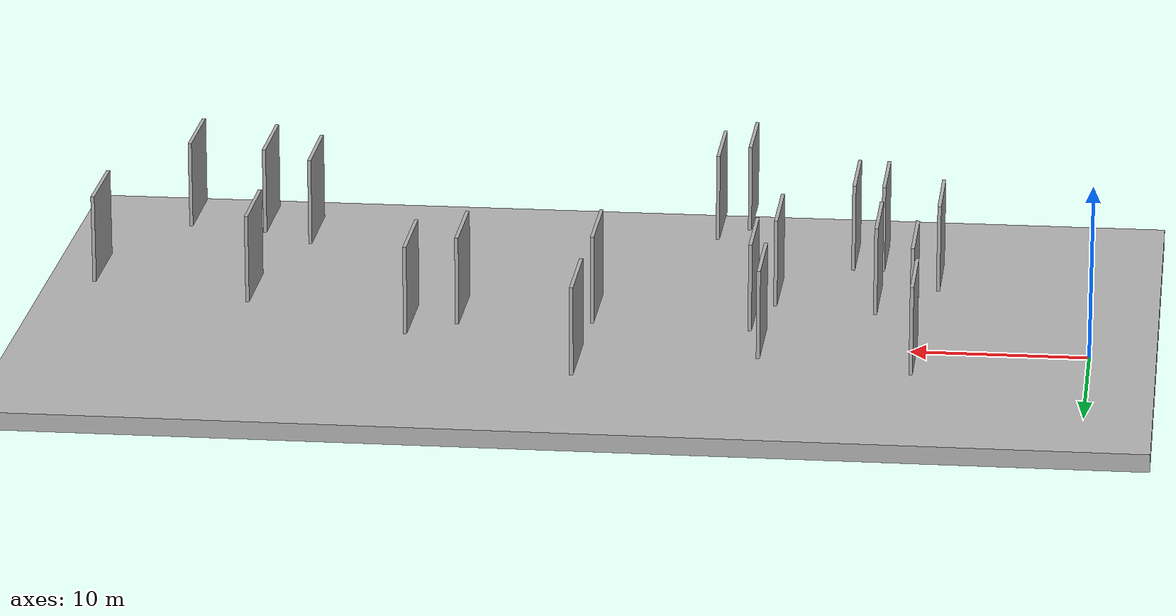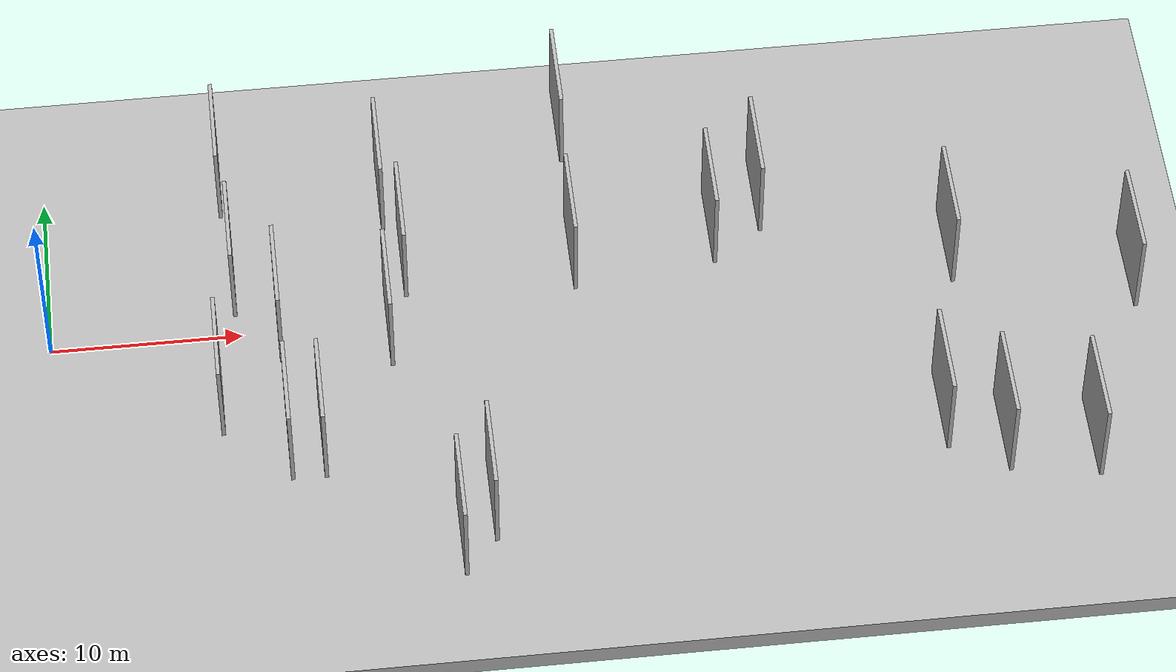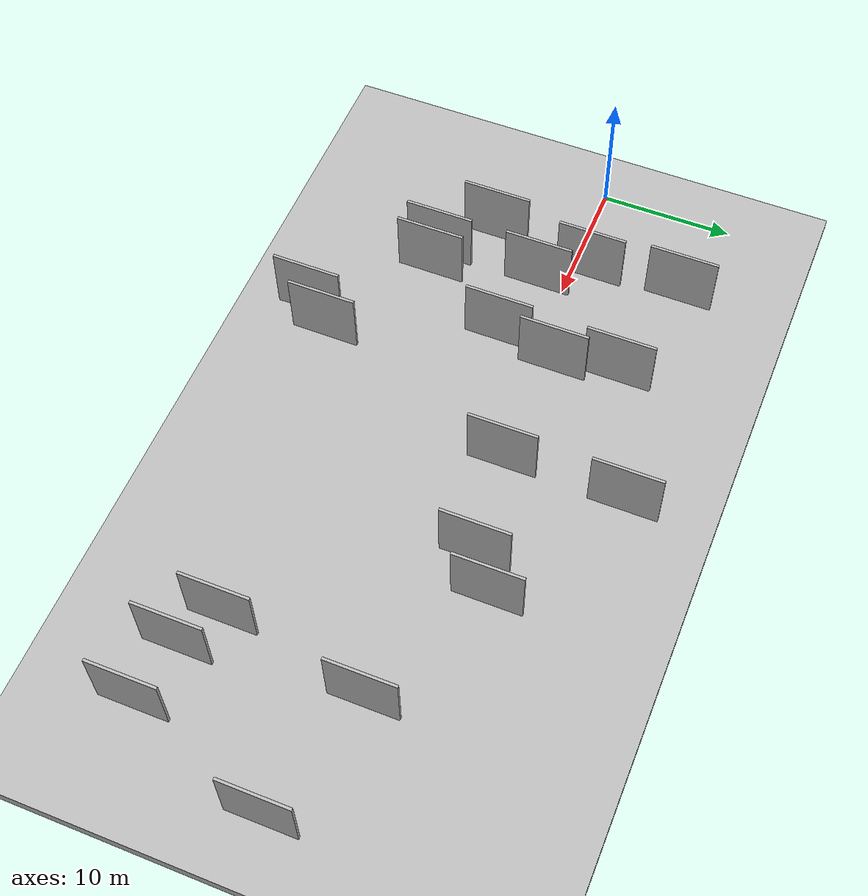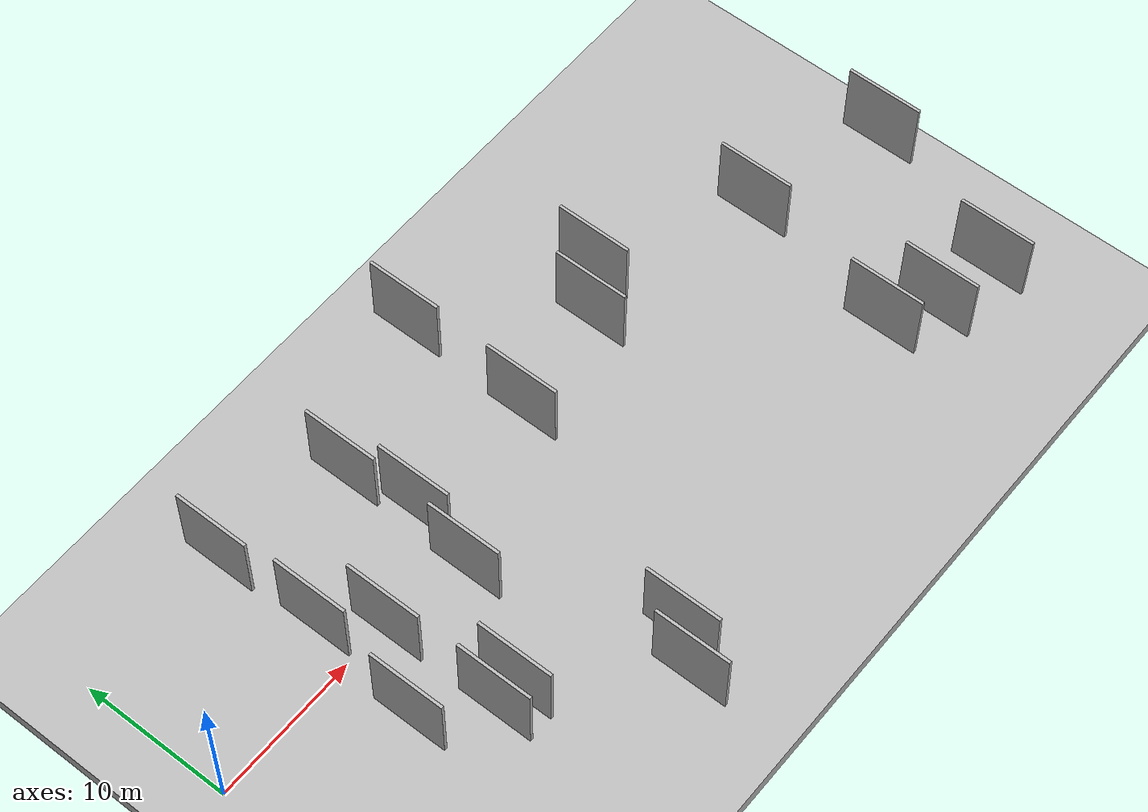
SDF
<?xml version="1.0" encoding="utf-8"?>

<sdf version="1.6">

   <world name="default">

      <gui fullscreen="0">

         <camera name="user_camera">

            <pose>-15 0 4.57585 0 0 0</pose>

            <view_controller>orbit</view_controller>

         </camera>

      </gui>

      <scene>

         <sky>

           <clouds>

             <speed>12</speed>

           </clouds>

         </sky>

         <ambient>0.4 0.4 0.4 1</ambient>

         <background>0.7 0.7 0.7 1</background>

         <shadows>1</shadows>

      </scene>

      <gravity>0 0 -9.8066</gravity>

      <magnetic_field>6e-06 2.3e-05 -4.2e-05</magnetic_field>

      <physics default="0" name="default_physics" type="ode">

         <ode>

            <solver>

               <type>quick</type>

               <iters>10</iters>

               <sor>1.0</sor>

               <use_dynamic_moi_rescaling>0</use_dynamic_moi_rescaling>

            </solver>

            <constraints>

               <cfm>0</cfm>

               <erp>0.2</erp>

               <contact_max_correcting_vel>100</contact_max_correcting_vel>

               <contact_surface_layer>0.001</contact_surface_layer>

            </constraints>

         </ode>

         <max_step_size>0.004</max_step_size>

         <real_time_factor>1</real_time_factor>

         <real_time_update_rate>250</real_time_update_rate>

      </physics>

      <light name="sun" type="directional">

         <cast_shadows>1</cast_shadows>

         <pose>0 0 10 0 0 0</pose>

         <diffuse>0.8 0.8 0.8 1</diffuse>

         <specular>0.2 0.2 0.2 1</specular>

         <attenuation>

            <range>1000</range>

            <constant>0.9</constant>

            <linear>0.01</linear>

            <quadratic>0.001</quadratic>

         </attenuation>

         <direction>-0.5 0.1 -0.9</direction>

      </light>

      <include>

         <name>ground_plane_1</name>

         <uri>model://HANNAS_ground_plane</uri>

         <pose>0 0 0  0 0 0</pose>

      </include>

      <include>

         <name>ground_plane_2</name>

         <uri>model://HANNAS_ground_plane</uri>

         <pose>100 0 0  0 0 0</pose>

      </include>

      <model name="HANNAS_wall_1">

         <static>1</static>

         <pose frame="">18.6274 2.1579 2.5 0.000000 0.000000 1.570796</pose>

         <link name="link">

            <pose frame="">0 0 2.50 0 0 0</pose>

            <collision name="collision">

               <geometry>

                  <box>

                     <size>5.00 0.2 5.00</size>

                  </box>

               </geometry>

               <max_contacts>10</max_contacts>

               <surface>

                  <contact>

                     <ode/>

                  </contact>

                  <bounce/>

                  <friction>

                     <torsional>

                        <ode/>

                     </torsional>

                     <ode/>

                  </friction>

               </surface>

            </collision>

            <visual name="visual">

               <cast_shadows>0</cast_shadows>

               <geometry>

                  <box>

                     <size>5.00 0.2 5.00</size>

                  </box>

               </geometry>

               <material>

                  <script>

                     <uri>model://HANNAS_wall/materials/scripts</uri>

                     <uri>model://HANNAS_wall/materials/textures</uri>

                     <name>vrc/HANNAS_wall</name>

                  </script>

               </material>

            </visual>

            <self_collide>0</self_collide>

            <enable_wind>0</enable_wind>

            <kinematic>0</kinematic>

         </link>

      </model>

      <model name="HANNAS_wall_2">

         <static>1</static>

         <pose frame="">52.4475 -13.1715 2.5 0.000000 0.000000 1.570796</pose>

         <link name="link">

            <pose frame="">0 0 2.50 0 0 0</pose>

            <collision name="collision">

               <geometry>

                  <box>

                     <size>5.00 0.2 5.00</size>

                  </box>

               </geometry>

               <max_contacts>10</max_contacts>

               <surface>

                  <contact>

                     <ode/>

                  </contact>

                  <bounce/>

                  <friction>

                     <torsional>

                        <ode/>

                     </torsional>

                     <ode/>

                  </friction>

               </surface>

            </collision>

            <visual name="visual">

               <cast_shadows>0</cast_shadows>

               <geometry>

                  <box>

                     <size>5.00 0.2 5.00</size>

                  </box>

               </geometry>

               <material>

                  <script>

                     <uri>model://HANNAS_wall/materials/scripts</uri>

                     <uri>model://HANNAS_wall/materials/textures</uri>

                     <name>vrc/HANNAS_wall</name>

                  </script>

               </material>

            </visual>

            <self_collide>0</self_collide>

            <enable_wind>0</enable_wind>

            <kinematic>0</kinematic>

         </link>

      </model>

      <model name="HANNAS_wall_3">

         <static>1</static>

         <pose frame="">17.5609 -2.3189 2.5 0.000000 0.000000 1.570796</pose>

         <link name="link">

            <pose frame="">0 0 2.50 0 0 0</pose>

            <collision name="collision">

               <geometry>

                  <box>

                     <size>5.00 0.2 5.00</size>

                  </box>

               </geometry>

               <max_contacts>10</max_contacts>

               <surface>

                  <contact>

                     <ode/>

                  </contact>

                  <bounce/>

                  <friction>

                     <torsional>

                        <ode/>

                     </torsional>

                     <ode/>

                  </friction>

               </surface>

            </collision>

            <visual name="visual">

               <cast_shadows>0</cast_shadows>

               <geometry>

                  <box>

                     <size>5.00 0.2 5.00</size>

                  </box>

               </geometry>

               <material>

                  <script>

                     <uri>model://HANNAS_wall/materials/scripts</uri>

                     <uri>model://HANNAS_wall/materials/textures</uri>

                     <name>vrc/HANNAS_wall</name>

                  </script>

               </material>

            </visual>

            <self_collide>0</self_collide>

            <enable_wind>0</enable_wind>

            <kinematic>0</kinematic>

         </link>

      </model>

      <model name="HANNAS_wall_4">

         <static>1</static>

         <pose frame="">45.0813 -10.6503 2.5 0.000000 0.000000 1.570796</pose>

         <link name="link">

            <pose frame="">0 0 2.50 0 0 0</pose>

            <collision name="collision">

               <geometry>

                  <box>

                     <size>5.00 0.2 5.00</size>

                  </box>

               </geometry>

               <max_contacts>10</max_contacts>

               <surface>

                  <contact>

                     <ode/>

                  </contact>

                  <bounce/>

                  <friction>

                     <torsional>

                        <ode/>

                     </torsional>

                     <ode/>

                  </friction>

               </surface>

            </collision>

            <visual name="visual">

               <cast_shadows>0</cast_shadows>

               <geometry>

                  <box>

                     <size>5.00 0.2 5.00</size>

                  </box>

               </geometry>

               <material>

                  <script>

                     <uri>model://HANNAS_wall/materials/scripts</uri>

                     <uri>model://HANNAS_wall/materials/textures</uri>

                     <name>vrc/HANNAS_wall</name>

                  </script>

               </material>

            </visual>

            <self_collide>0</self_collide>

            <enable_wind>0</enable_wind>

            <kinematic>0</kinematic>

         </link>

      </model>

      <model name="HANNAS_wall_5">

         <static>1</static>

         <pose frame="">8.6585 -5.8861 2.5 0.000000 0.000000 1.570796</pose>

         <link name="link">

            <pose frame="">0 0 2.50 0 0 0</pose>

            <collision name="collision">

               <geometry>

                  <box>

                     <size>5.00 0.2 5.00</size>

                  </box>

               </geometry>

               <max_contacts>10</max_contacts>

               <surface>

                  <contact>

                     <ode/>

                  </contact>

                  <bounce/>

                  <friction>

                     <torsional>

                        <ode/>

                     </torsional>

                     <ode/>

                  </friction>

               </surface>

            </collision>

            <visual name="visual">

               <cast_shadows>0</cast_shadows>

               <geometry>

                  <box>

                     <size>5.00 0.2 5.00</size>

                  </box>

               </geometry>

               <material>

                  <script>

                     <uri>model://HANNAS_wall/materials/scripts</uri>

                     <uri>model://HANNAS_wall/materials/textures</uri>

                     <name>vrc/HANNAS_wall</name>

                  </script>

               </material>

            </visual>

            <self_collide>0</self_collide>

            <enable_wind>0</enable_wind>

            <kinematic>0</kinematic>

         </link>

      </model>

      <model name="HANNAS_wall_6">

         <static>1</static>

         <pose frame="">11.9207 -1.4481 2.5 0.000000 0.000000 1.570796</pose>

         <link name="link">

            <pose frame="">0 0 2.50 0 0 0</pose>

            <collision name="collision">

               <geometry>

                  <box>

                     <size>5.00 0.2 5.00</size>

                  </box>

               </geometry>

               <max_contacts>10</max_contacts>

               <surface>

                  <contact>

                     <ode/>

                  </contact>

                  <bounce/>

                  <friction>

                     <torsional>

                        <ode/>

                     </torsional>

                     <ode/>

                  </friction>

               </surface>

            </collision>

            <visual name="visual">

               <cast_shadows>0</cast_shadows>

               <geometry>

                  <box>

                     <size>5.00 0.2 5.00</size>

                  </box>

               </geometry>

               <material>

                  <script>

                     <uri>model://HANNAS_wall/materials/scripts</uri>

                     <uri>model://HANNAS_wall/materials/textures</uri>

                     <name>vrc/HANNAS_wall</name>

                  </script>

               </material>

            </visual>

            <self_collide>0</self_collide>

            <enable_wind>0</enable_wind>

            <kinematic>0</kinematic>

         </link>

      </model>

      <model name="HANNAS_wall_7">

         <static>1</static>

         <pose frame="">9.3648 8.5706 2.5 0.000000 0.000000 1.570796</pose>

         <link name="link">

            <pose frame="">0 0 2.50 0 0 0</pose>

            <collision name="collision">

               <geometry>

                  <box>

                     <size>5.00 0.2 5.00</size>

                  </box>

               </geometry>

               <max_contacts>10</max_contacts>

               <surface>

                  <contact>

                     <ode/>

                  </contact>

                  <bounce/>

                  <friction>

                     <torsional>

                        <ode/>

                     </torsional>

                     <ode/>

                  </friction>

               </surface>

            </collision>

            <visual name="visual">

               <cast_shadows>0</cast_shadows>

               <geometry>

                  <box>

                     <size>5.00 0.2 5.00</size>

                  </box>

               </geometry>

               <material>

                  <script>

                     <uri>model://HANNAS_wall/materials/scripts</uri>

                     <uri>model://HANNAS_wall/materials/textures</uri>

                     <name>vrc/HANNAS_wall</name>

                  </script>

               </material>

            </visual>

            <self_collide>0</self_collide>

            <enable_wind>0</enable_wind>

            <kinematic>0</kinematic>

         </link>

      </model>

      <model name="HANNAS_wall_8">

         <static>1</static>

         <pose frame="">27.6181 10.5219 2.5 0.000000 0.000000 1.570796</pose>

         <link name="link">

            <pose frame="">0 0 2.50 0 0 0</pose>

            <collision name="collision">

               <geometry>

                  <box>

                     <size>5.00 0.2 5.00</size>

                  </box>

               </geometry>

               <max_contacts>10</max_contacts>

               <surface>

                  <contact>

                     <ode/>

                  </contact>

                  <bounce/>

                  <friction>

                     <torsional>

                        <ode/>

                     </torsional>

                     <ode/>

                  </friction>

               </surface>

            </collision>

            <visual name="visual">

               <cast_shadows>0</cast_shadows>

               <geometry>

                  <box>

                     <size>5.00 0.2 5.00</size>

                  </box>

               </geometry>

               <material>

                  <script>

                     <uri>model://HANNAS_wall/materials/scripts</uri>

                     <uri>model://HANNAS_wall/materials/textures</uri>

                     <name>vrc/HANNAS_wall</name>

                  </script>

               </material>

            </visual>

            <self_collide>0</self_collide>

            <enable_wind>0</enable_wind>

            <kinematic>0</kinematic>

         </link>

      </model>

      <model name="HANNAS_wall_9">

         <static>1</static>

         <pose frame="">34.8596 2.7098 2.5 0.000000 0.000000 1.570796</pose>

         <link name="link">

            <pose frame="">0 0 2.50 0 0 0</pose>

            <collision name="collision">

               <geometry>

                  <box>

                     <size>5.00 0.2 5.00</size>

                  </box>

               </geometry>

               <max_contacts>10</max_contacts>

               <surface>

                  <contact>

                     <ode/>

                  </contact>

                  <bounce/>

                  <friction>

                     <torsional>

                        <ode/>

                     </torsional>

                     <ode/>

                  </friction>

               </surface>

            </collision>

            <visual name="visual">

               <cast_shadows>0</cast_shadows>

               <geometry>

                  <box>

                     <size>5.00 0.2 5.00</size>

                  </box>

               </geometry>

               <material>

                  <script>

                     <uri>model://HANNAS_wall/materials/scripts</uri>

                     <uri>model://HANNAS_wall/materials/textures</uri>

                     <name>vrc/HANNAS_wall</name>

                  </script>

               </material>

            </visual>

            <self_collide>0</self_collide>

            <enable_wind>0</enable_wind>

            <kinematic>0</kinematic>

         </link>

      </model>

      <model name="HANNAS_wall_10">

         <static>1</static>

         <pose frame="">21.8098 -13.9766 2.5 0.000000 0.000000 1.570796</pose>

         <link name="link">

            <pose frame="">0 0 2.50 0 0 0</pose>

            <collision name="collision">

               <geometry>

                  <box>

                     <size>5.00 0.2 5.00</size>

                  </box>

               </geometry>

               <max_contacts>10</max_contacts>

               <surface>

                  <contact>

                     <ode/>

                  </contact>

                  <bounce/>

                  <friction>

                     <torsional>

                        <ode/>

                     </torsional>

                     <ode/>

                  </friction>

               </surface>

            </collision>

            <visual name="visual">

               <cast_shadows>0</cast_shadows>

               <geometry>

                  <box>

                     <size>5.00 0.2 5.00</size>

                  </box>

               </geometry>

               <material>

                  <script>

                     <uri>model://HANNAS_wall/materials/scripts</uri>

                     <uri>model://HANNAS_wall/materials/textures</uri>

                     <name>vrc/HANNAS_wall</name>

                  </script>

               </material>

            </visual>

            <self_collide>0</self_collide>

            <enable_wind>0</enable_wind>

            <kinematic>0</kinematic>

         </link>

      </model>

      <model name="HANNAS_wall_11">

         <static>1</static>

         <pose frame="">17.8005 6.7422 2.5 0.000000 0.000000 1.570796</pose>

         <link name="link">

            <pose frame="">0 0 2.50 0 0 0</pose>

            <collision name="collision">

               <geometry>

                  <box>

                     <size>5.00 0.2 5.00</size>

                  </box>

               </geometry>

               <max_contacts>10</max_contacts>

               <surface>

                  <contact>

                     <ode/>

                  </contact>

                  <bounce/>

                  <friction>

                     <torsional>

                        <ode/>

                     </torsional>

                     <ode/>

                  </friction>

               </surface>

            </collision>

            <visual name="visual">

               <cast_shadows>0</cast_shadows>

               <geometry>

                  <box>

                     <size>5.00 0.2 5.00</size>

                  </box>

               </geometry>

               <material>

                  <script>

                     <uri>model://HANNAS_wall/materials/scripts</uri>

                     <uri>model://HANNAS_wall/materials/textures</uri>

                     <name>vrc/HANNAS_wall</name>

                  </script>

               </material>

            </visual>

            <self_collide>0</self_collide>

            <enable_wind>0</enable_wind>

            <kinematic>0</kinematic>

         </link>

      </model>

      <model name="HANNAS_wall_12">

         <static>1</static>

         <pose frame="">20.1133 -15.9107 2.5 0.000000 0.000000 1.570796</pose>

         <link name="link">

            <pose frame="">0 0 2.50 0 0 0</pose>

            <collision name="collision">

               <geometry>

                  <box>

                     <size>5.00 0.2 5.00</size>

                  </box>

               </geometry>

               <max_contacts>10</max_contacts>

               <surface>

                  <contact>

                     <ode/>

                  </contact>

                  <bounce/>

                  <friction>

                     <torsional>

                        <ode/>

                     </torsional>

                     <ode/>

                  </friction>

               </surface>

            </collision>

            <visual name="visual">

               <cast_shadows>0</cast_shadows>

               <geometry>

                  <box>

                     <size>5.00 0.2 5.00</size>

                  </box>

               </geometry>

               <material>

                  <script>

                     <uri>model://HANNAS_wall/materials/scripts</uri>

                     <uri>model://HANNAS_wall/materials/textures</uri>

                     <name>vrc/HANNAS_wall</name>

                  </script>

               </material>

            </visual>

            <self_collide>0</self_collide>

            <enable_wind>0</enable_wind>

            <kinematic>0</kinematic>

         </link>

      </model>

      <model name="HANNAS_wall_13">

         <static>1</static>

         <pose frame="">47.9899 -12.4171 2.5 0.000000 0.000000 1.570796</pose>

         <link name="link">

            <pose frame="">0 0 2.50 0 0 0</pose>

            <collision name="collision">

               <geometry>

                  <box>

                     <size>5.00 0.2 5.00</size>

                  </box>

               </geometry>

               <max_contacts>10</max_contacts>

               <surface>

                  <contact>

                     <ode/>

                  </contact>

                  <bounce/>

                  <friction>

                     <torsional>

                        <ode/>

                     </torsional>

                     <ode/>

                  </friction>

               </surface>

            </collision>

            <visual name="visual">

               <cast_shadows>0</cast_shadows>

               <geometry>

                  <box>

                     <size>5.00 0.2 5.00</size>

                  </box>

               </geometry>

               <material>

                  <script>

                     <uri>model://HANNAS_wall/materials/scripts</uri>

                     <uri>model://HANNAS_wall/materials/textures</uri>

                     <name>vrc/HANNAS_wall</name>

                  </script>

               </material>

            </visual>

            <self_collide>0</self_collide>

            <enable_wind>0</enable_wind>

            <kinematic>0</kinematic>

         </link>

      </model>

      <model name="HANNAS_wall_14">

         <static>1</static>

         <pose frame="">27.4349 1.7418 2.5 0.000000 0.000000 1.570796</pose>

         <link name="link">

            <pose frame="">0 0 2.50 0 0 0</pose>

            <collision name="collision">

               <geometry>

                  <box>

                     <size>5.00 0.2 5.00</size>

                  </box>

               </geometry>

               <max_contacts>10</max_contacts>

               <surface>

                  <contact>

                     <ode/>

                  </contact>

                  <bounce/>

                  <friction>

                     <torsional>

                        <ode/>

                     </torsional>

                     <ode/>

                  </friction>

               </surface>

            </collision>

            <visual name="visual">

               <cast_shadows>0</cast_shadows>

               <geometry>

                  <box>

                     <size>5.00 0.2 5.00</size>

                  </box>

               </geometry>

               <material>

                  <script>

                     <uri>model://HANNAS_wall/materials/scripts</uri>

                     <uri>model://HANNAS_wall/materials/textures</uri>

                     <name>vrc/HANNAS_wall</name>

                  </script>

               </material>

            </visual>

            <self_collide>0</self_collide>

            <enable_wind>0</enable_wind>

            <kinematic>0</kinematic>

         </link>

      </model>

      <model name="HANNAS_wall_15">

         <static>1</static>

         <pose frame="">9.7112 1.7978 2.5 0.000000 0.000000 1.570796</pose>

         <link name="link">

            <pose frame="">0 0 2.50 0 0 0</pose>

            <collision name="collision">

               <geometry>

                  <box>

                     <size>5.00 0.2 5.00</size>

                  </box>

               </geometry>

               <max_contacts>10</max_contacts>

               <surface>

                  <contact>

                     <ode/>

                  </contact>

                  <bounce/>

                  <friction>

                     <torsional>

                        <ode/>

                     </torsional>

                     <ode/>

                  </friction>

               </surface>

            </collision>

            <visual name="visual">

               <cast_shadows>0</cast_shadows>

               <geometry>

                  <box>

                     <size>5.00 0.2 5.00</size>

                  </box>

               </geometry>

               <material>

                  <script>

                     <uri>model://HANNAS_wall/materials/scripts</uri>

                     <uri>model://HANNAS_wall/materials/textures</uri>

                     <name>vrc/HANNAS_wall</name>

                  </script>

               </material>

            </visual>

            <self_collide>0</self_collide>

            <enable_wind>0</enable_wind>

            <kinematic>0</kinematic>

         </link>

      </model>

      <model name="HANNAS_wall_16">

         <static>1</static>

         <pose frame="">37.4940 4.6120 2.5 0.000000 0.000000 1.570796</pose>

         <link name="link">

            <pose frame="">0 0 2.50 0 0 0</pose>

            <collision name="collision">

               <geometry>

                  <box>

                     <size>5.00 0.2 5.00</size>

                  </box>

               </geometry>

               <max_contacts>10</max_contacts>

               <surface>

                  <contact>

                     <ode/>

                  </contact>

                  <bounce/>

                  <friction>

                     <torsional>

                        <ode/>

                     </torsional>

                     <ode/>

                  </friction>

               </surface>

            </collision>

            <visual name="visual">

               <cast_shadows>0</cast_shadows>

               <geometry>

                  <box>

                     <size>5.00 0.2 5.00</size>

                  </box>

               </geometry>

               <material>

                  <script>

                     <uri>model://HANNAS_wall/materials/scripts</uri>

                     <uri>model://HANNAS_wall/materials/textures</uri>

                     <name>vrc/HANNAS_wall</name>

                  </script>

               </material>

            </visual>

            <self_collide>0</self_collide>

            <enable_wind>0</enable_wind>

            <kinematic>0</kinematic>

         </link>

      </model>

      <model name="HANNAS_wall_17">

         <static>1</static>

         <pose frame="">13.6550 -9.1231 2.5 0.000000 0.000000 1.570796</pose>

         <link name="link">

            <pose frame="">0 0 2.50 0 0 0</pose>

            <collision name="collision">

               <geometry>

                  <box>

                     <size>5.00 0.2 5.00</size>

                  </box>

               </geometry>

               <max_contacts>10</max_contacts>

               <surface>

                  <contact>

                     <ode/>

                  </contact>

                  <bounce/>

                  <friction>

                     <torsional>

                        <ode/>

                     </torsional>

                     <ode/>

                  </friction>

               </surface>

            </collision>

            <visual name="visual">

               <cast_shadows>0</cast_shadows>

               <geometry>

                  <box>

                     <size>5.00 0.2 5.00</size>

                  </box>

               </geometry>

               <material>

                  <script>

                     <uri>model://HANNAS_wall/materials/scripts</uri>

                     <uri>model://HANNAS_wall/materials/textures</uri>

                     <name>vrc/HANNAS_wall</name>

                  </script>

               </material>

            </visual>

            <self_collide>0</self_collide>

            <enable_wind>0</enable_wind>

            <kinematic>0</kinematic>

         </link>

      </model>

      <model name="HANNAS_wall_18">

         <static>1</static>

         <pose frame="">56.1921 -2.5561 2.5 0.000000 0.000000 1.570796</pose>

         <link name="link">

            <pose frame="">0 0 2.50 0 0 0</pose>

            <collision name="collision">

               <geometry>

                  <box>

                     <size>5.00 0.2 5.00</size>

                  </box>

               </geometry>

               <max_contacts>10</max_contacts>

               <surface>

                  <contact>

                     <ode/>

                  </contact>

                  <bounce/>

                  <friction>

                     <torsional>

                        <ode/>

                     </torsional>

                     <ode/>

                  </friction>

               </surface>

            </collision>

            <visual name="visual">

               <cast_shadows>0</cast_shadows>

               <geometry>

                  <box>

                     <size>5.00 0.2 5.00</size>

                  </box>

               </geometry>

               <material>

                  <script>

                     <uri>model://HANNAS_wall/materials/scripts</uri>

                     <uri>model://HANNAS_wall/materials/textures</uri>

                     <name>vrc/HANNAS_wall</name>

                  </script>

               </material>

            </visual>

            <self_collide>0</self_collide>

            <enable_wind>0</enable_wind>

            <kinematic>0</kinematic>

         </link>

      </model>

      <model name="HANNAS_wall_19">

         <static>1</static>

         <pose frame="">11.9622 -9.0861 2.5 0.000000 0.000000 1.570796</pose>

         <link name="link">

            <pose frame="">0 0 2.50 0 0 0</pose>

            <collision name="collision">

               <geometry>

                  <box>

                     <size>5.00 0.2 5.00</size>

                  </box>

               </geometry>

               <max_contacts>10</max_contacts>

               <surface>

                  <contact>

                     <ode/>

                  </contact>

                  <bounce/>

                  <friction>

                     <torsional>

                        <ode/>

                     </torsional>

                     <ode/>

                  </friction>

               </surface>

            </collision>

            <visual name="visual">

               <cast_shadows>0</cast_shadows>

               <geometry>

                  <box>

                     <size>5.00 0.2 5.00</size>

                  </box>

               </geometry>

               <material>

                  <script>

                     <uri>model://HANNAS_wall/materials/scripts</uri>

                     <uri>model://HANNAS_wall/materials/textures</uri>

                     <name>vrc/HANNAS_wall</name>

                  </script>

               </material>

            </visual>

            <self_collide>0</self_collide>

            <enable_wind>0</enable_wind>

            <kinematic>0</kinematic>

         </link>

      </model>

      <model name="HANNAS_wall_20">

         <static>1</static>

         <pose frame="">47.0196 0.0948 2.5 0.000000 0.000000 1.570796</pose>

         <link name="link">

            <pose frame="">0 0 2.50 0 0 0</pose>

            <collision name="collision">

               <geometry>

                  <box>

                     <size>5.00 0.2 5.00</size>

                  </box>

               </geometry>

               <max_contacts>10</max_contacts>

               <surface>

                  <contact>

                     <ode/>

                  </contact>

                  <bounce/>

                  <friction>

                     <torsional>

                        <ode/>

                     </torsional>

                     <ode/>

                  </friction>

               </surface>

            </collision>

            <visual name="visual">

               <cast_shadows>0</cast_shadows>

               <geometry>

                  <box>

                     <size>5.00 0.2 5.00</size>

                  </box>

               </geometry>

               <material>

                  <script>

                     <uri>model://HANNAS_wall/materials/scripts</uri>

                     <uri>model://HANNAS_wall/materials/textures</uri>

                     <name>vrc/HANNAS_wall</name>

                  </script>

               </material>

            </visual>

            <self_collide>0</self_collide>

            <enable_wind>0</enable_wind>

            <kinematic>0</kinematic>

         </link>

      </model>

   </world>

</sdf>

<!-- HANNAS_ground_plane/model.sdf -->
<sdf version="1.4">
<model name="HANNAS_ground_plane">
  <static>true</static>
    <link name="link">
      <collision name="collision">
        <geometry>
          <plane>
            <normal>0 0 1</normal>
            <size>1000 1000</size>
          </plane>
        </geometry>
        <surface>
          <friction>
            <ode>
              <mu>100</mu>
              <mu2>50</mu2>
            </ode>
          </friction>
        </surface>
      </collision>
      <visual name="visual">
        <cast_shadows>false</cast_shadows>
        <geometry>
          <plane>
            <normal>0 0 1</normal>
            <size>1000 1000</size>
          </plane>
        </geometry>
        <material>
          <script>
            <uri>model://HANNAS_ground_plane/materials/scripts/HANNAS_ground_plane.material</uri>
	    <uri>model://HANNAS_ground_plane/materials/textures</uri>
            <name>HANNASGroundPlane/Image</name>
          </script>
        </material>
      </visual>
    </link>
  </model>
</sdf>
